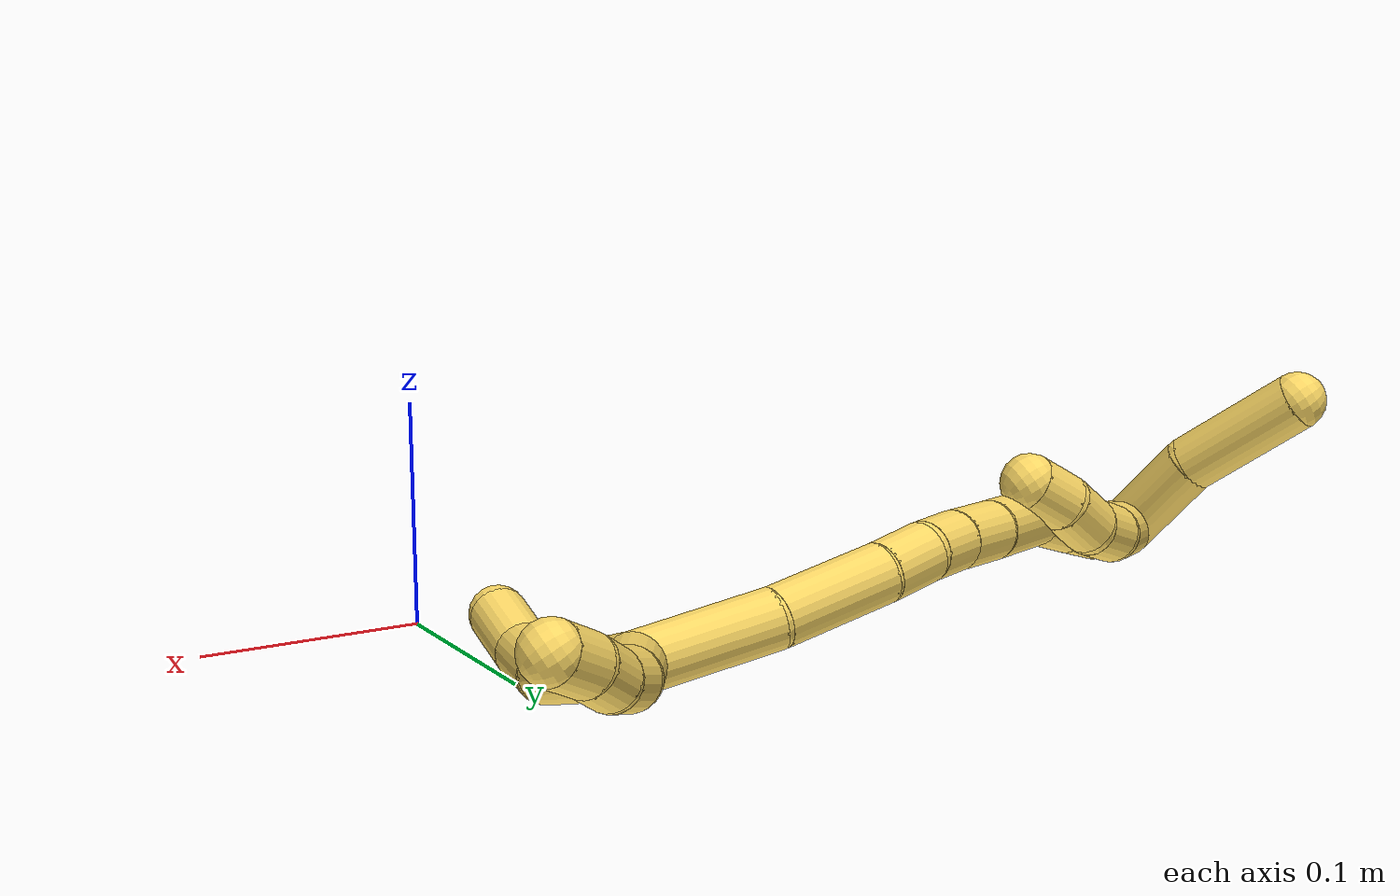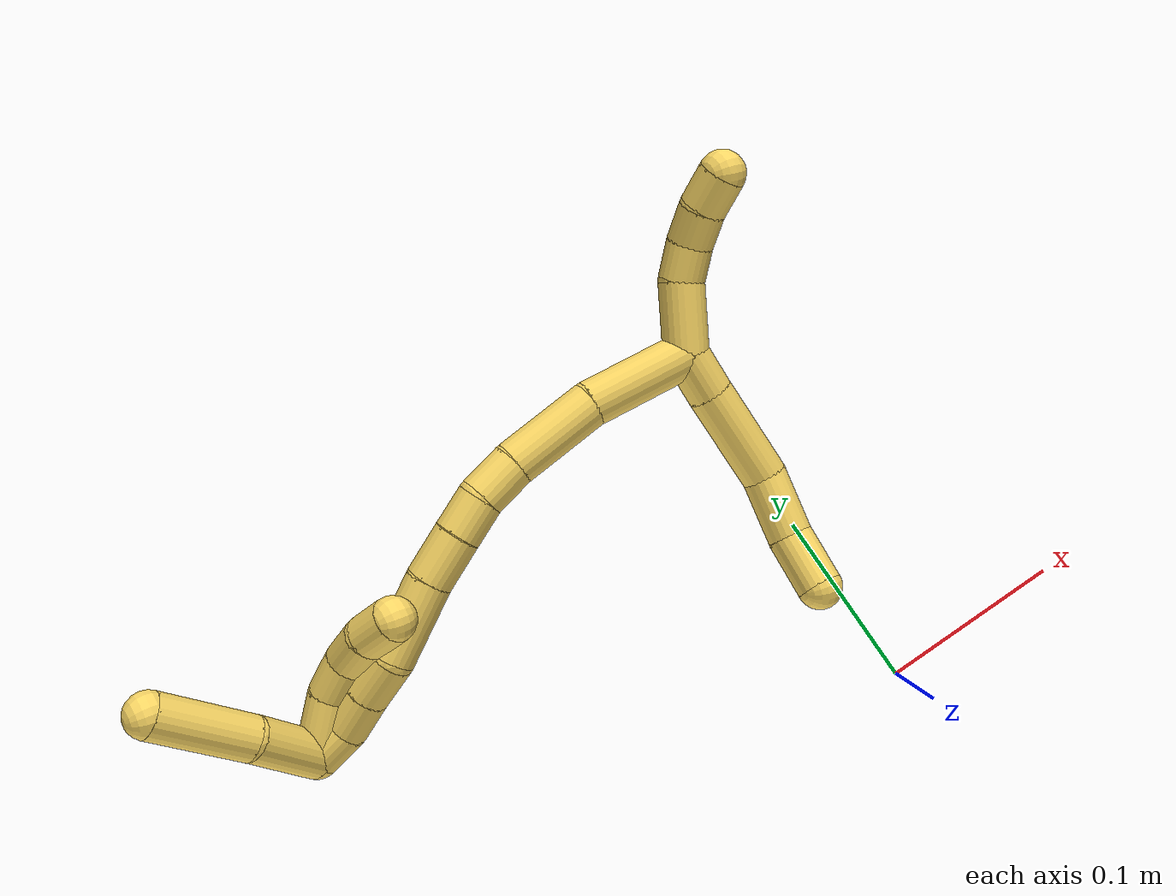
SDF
<sdf version="1.7">
 <world name="default">
  <model name="photoneo_s_sensor">
   <static>1</static>
   <pose>0 0 2 1.57079 1.57079 3.14159</pose>
   <link name="link">
    <inertial><mass>0.1</mass></inertial>
    <sensor name="sensor" type="depth">
     <update_rate>30</update_rate>
     <camera>
      <horizontal_fov>1.22</horizontal_fov>
      <image><width>1920</width><height>1200</height><format>B8G8R8</format></image>
      <clip><near>0.1</near><far>4</far></clip>
      <depth_camera><output>points</output></depth_camera>
     </camera>
     <plugin name="camera_plugin" filename="libgazebo_ros_depth_camera.so">
      <baseline>0.2</baseline>
      <alwaysOn>1</alwaysOn>
      <updateRate>0.0</updateRate>
      <cameraName>camera_ir</cameraName>
      <imageTopicName>/camera/color/image_raw</imageTopicName>
      <cameraInfoTopicName>/camera/color/camera_info</cameraInfoTopicName>
      <depthImageTopicName>/camera/depth/image_raw</depthImageTopicName>
      <depthImageCameraInfoTopicName>/camera/depth/camera_info</depthImageCameraInfoTopicName>
      <pointCloudTopicName>/camera/depth/points</pointCloudTopicName>
      <frameName>fr_optical</frameName>
      <pointCloudCutoff>0.1</pointCloudCutoff>
      <pointCloudCutoffMax>2.0</pointCloudCutoffMax>
      <distortionK1>0</distortionK1>
      <distortionK2>0</distortionK2>
      <distortionK3>0</distortionK3>
      <distortionT1>0</distortionT1>
      <distortionT2>0</distortionT2>
      <CxPrime>0</CxPrime>
      <Cx>0</Cx>
      <Cy>0</Cy>
      <focalLength>0</focalLength>
      <hackBaseline>0</hackBaseline>
     </plugin>
    </sensor>
   </link>
  </model>
  <model name="bin">
   <static>1</static>
   <link name="bottom">
    <collision name="collision-bottom">
     <pose>0 0 -0.01 0 -0 0</pose>
     <geometry><box><size>0.8 0.6 0.02</size></box></geometry>
     <surface>
      <friction><ode><mu>100</mu><mu2>100</mu2></ode></friction>
      <contact><collide_bitmask>65535</collide_bitmask></contact>
     </surface>
    </collision>
   </link>
   <link name="west_wall">
    <collision name="collision-west_wall">
     <pose>-0.41 0 0.1 0 -0 0</pose>
     <geometry><box><size>0.02 0.6 0.2</size></box></geometry>
     <surface>
      <friction><ode><mu>100</mu><mu2>100</mu2></ode></friction>
      <contact><collide_bitmask>65535</collide_bitmask></contact>
     </surface>
    </collision>
   </link>
   <link name="east_wall">
    <collision name="collision-east_wall">
     <pose>0.41 0 0.1 0 -0 0</pose>
     <geometry><box><size>0.02 0.6 0.2</size></box></geometry>
     <surface>
      <friction><ode><mu>100</mu><mu2>100</mu2></ode></friction>
      <contact><collide_bitmask>65535</collide_bitmask></contact>
     </surface>
    </collision>
   </link>
   <link name="south_wall">
    <collision name="collision-south_wall">
     <pose>0 -0.31 0.1 0 -0 0</pose>
     <geometry><box><size>0.8 0.02 0.2</size></box></geometry>
     <surface>
      <friction><ode><mu>100</mu><mu2>100</mu2></ode></friction>
      <contact><collide_bitmask>65535</collide_bitmask></contact>
     </surface>
    </collision>
   </link>
   <link name="north_wall">
    <collision name="collision-north_wall">
     <pose>0 0.31 0.1 0 -0 0</pose>
     <geometry><box><size>0.8 0.02 0.2</size></box></geometry>
     <surface>
      <friction><ode><mu>100</mu><mu2>100</mu2></ode></friction>
      <contact><collide_bitmask>65535</collide_bitmask></contact>
     </surface>
    </collision>
   </link>
  </model>
  <model name="5">
   <static>0</static>
   <link name="5">
    <collision name="collision-cylinder-e_1_2_8">
     <pose>-0.001856 -0.011675 -0.004526 1.94062 -0.14714 -0.214412</pose>
     <geometry><cylinder><radius>0.0125</radius><length>0.025317</length></cylinder></geometry>
     <surface>
      <friction><ode><mu>1.16</mu><mu2>1.16</mu2><slip1>0</slip1><slip2>0</slip2></ode></friction>
      <contact><ode><kp>1e+06</kp><kd>1</kd><max_vel>0</max_vel><min_depth>0.001</min_depth></ode></contact>
     </surface>
    </collision>
    <visual name="visual-cylinder-e_1_2_8">
     <pose>-0.001856 -0.011675 -0.004526 1.94062 -0.14714 -0.214412</pose>
     <geometry><cylinder><radius>0.0125</radius><length>0.025317</length></cylinder></geometry>
     <material><ambient>1 0.858824 0.4 1</ambient></material>
    </visual>
    <collision name="collision-cylinder-e_2_8_9">
     <pose>-0.006386 -0.049523 -0.019108 1.93764 -0.09511 -0.138318</pose>
     <geometry><cylinder><radius>0.0125</radius><length>0.056332</length></cylinder></geometry>
     <surface>
      <friction><ode><mu>1.16</mu><mu2>1.16</mu2><slip1>0</slip1><slip2>0</slip2></ode></friction>
      <contact><ode><kp>1e+06</kp><kd>1</kd><max_vel>0</max_vel><min_depth>0.001</min_depth></ode></contact>
     </surface>
    </collision>
    <visual name="visual-cylinder-e_2_8_9">
     <pose>-0.006386 -0.049523 -0.019108 1.93764 -0.09511 -0.138318</pose>
     <geometry><cylinder><radius>0.0125</radius><length>0.056332</length></cylinder></geometry>
     <material><ambient>1 0.858824 0.4 1</ambient></material>
    </visual>
    <collision name="collision-cylinder-e_3_9_10">
     <pose>-0.008316 -0.093772 -0.030247 1.63056 0.041128 0.043661</pose>
     <geometry><cylinder><radius>0.0125</radius><length>0.036248</length></cylinder></geometry>
     <surface>
      <friction><ode><mu>1.16</mu><mu2>1.16</mu2><slip1>0</slip1><slip2>0</slip2></ode></friction>
      <contact><ode><kp>1e+06</kp><kd>1</kd><max_vel>0</max_vel><min_depth>0.001</min_depth></ode></contact>
     </surface>
    </collision>
    <visual name="visual-cylinder-e_3_9_10">
     <pose>-0.008316 -0.093772 -0.030247 1.63056 0.041128 0.043661</pose>
     <geometry><cylinder><radius>0.0125</radius><length>0.036248</length></cylinder></geometry>
     <material><ambient>1 0.858824 0.4 1</ambient></material>
    </visual>
    <collision name="collision-cylinder-e_4_10_6">
     <pose>-0.002436 -0.127057 -0.031436 1.57784 0.325619 0.327878</pose>
     <geometry><cylinder><radius>0.0125</radius><length>0.032104</length></cylinder></geometry>
     <surface>
      <friction><ode><mu>1.16</mu><mu2>1.16</mu2><slip1>0</slip1><slip2>0</slip2></ode></friction>
      <contact><ode><kp>1e+06</kp><kd>1</kd><max_vel>0</max_vel><min_depth>0.001</min_depth></ode></contact>
     </surface>
    </collision>
    <visual name="visual-cylinder-e_4_10_6">
     <pose>-0.002436 -0.127057 -0.031436 1.57784 0.325619 0.327878</pose>
     <geometry><cylinder><radius>0.0125</radius><length>0.032104</length></cylinder></geometry>
     <material><ambient>1 0.858824 0.4 1</ambient></material>
    </visual>
    <collision name="collision-cylinder-e_1_2_11">
     <pose>0.004718 0.018609 -0.002938 -1.72737 0.245374 -0.286621</pose>
     <geometry><cylinder><radius>0.0125</radius><length>0.038843</length></cylinder></geometry>
     <surface>
      <friction><ode><mu>1.16</mu><mu2>1.16</mu2><slip1>0</slip1><slip2>0</slip2></ode></friction>
      <contact><ode><kp>1e+06</kp><kd>1</kd><max_vel>0</max_vel><min_depth>0.001</min_depth></ode></contact>
     </surface>
    </collision>
    <visual name="visual-cylinder-e_1_2_11">
     <pose>0.004718 0.018609 -0.002938 -1.72737 0.245374 -0.286621</pose>
     <geometry><cylinder><radius>0.0125</radius><length>0.038843</length></cylinder></geometry>
     <material><ambient>1 0.858824 0.4 1</ambient></material>
    </visual>
    <collision name="collision-cylinder-e_2_11_12">
     <pose>0.0143 0.045494 -0.008905 -1.92175 0.504304 -0.706438</pose>
     <geometry><cylinder><radius>0.0125</radius><length>0.020133</length></cylinder></geometry>
     <surface>
      <friction><ode><mu>1.16</mu><mu2>1.16</mu2><slip1>0</slip1><slip2>0</slip2></ode></friction>
      <contact><ode><kp>1e+06</kp><kd>1</kd><max_vel>0</max_vel><min_depth>0.001</min_depth></ode></contact>
     </surface>
    </collision>
    <visual name="visual-cylinder-e_2_11_12">
     <pose>0.0143 0.045494 -0.008905 -1.92175 0.504304 -0.706438</pose>
     <geometry><cylinder><radius>0.0125</radius><length>0.020133</length></cylinder></geometry>
     <material><ambient>1 0.858824 0.4 1</ambient></material>
    </visual>
    <collision name="collision-cylinder-e_3_12_13">
     <pose>0.02621 0.060677 -0.014211 -1.88901 0.769636 -1.02072</pose>
     <geometry><cylinder><radius>0.0125</radius><length>0.020252</length></cylinder></geometry>
     <surface>
      <friction><ode><mu>1.16</mu><mu2>1.16</mu2><slip1>0</slip1><slip2>0</slip2></ode></friction>
      <contact><ode><kp>1e+06</kp><kd>1</kd><max_vel>0</max_vel><min_depth>0.001</min_depth></ode></contact>
     </surface>
    </collision>
    <visual name="visual-cylinder-e_3_12_13">
     <pose>0.02621 0.060677 -0.014211 -1.88901 0.769636 -1.02072</pose>
     <geometry><cylinder><radius>0.0125</radius><length>0.020252</length></cylinder></geometry>
     <material><ambient>1 0.858824 0.4 1</ambient></material>
    </visual>
    <collision name="collision-cylinder-e_4_13_5">
     <pose>0.040696 0.073705 -0.020367 -2.13596 0.798463 -1.30873</pose>
     <geometry><cylinder><radius>0.0125</radius><length>0.020773</length></cylinder></geometry>
     <surface>
      <friction><ode><mu>1.16</mu><mu2>1.16</mu2><slip1>0</slip1><slip2>0</slip2></ode></friction>
      <contact><ode><kp>1e+06</kp><kd>1</kd><max_vel>0</max_vel><min_depth>0.001</min_depth></ode></contact>
     </surface>
    </collision>
    <visual name="visual-cylinder-e_4_13_5">
     <pose>0.040696 0.073705 -0.020367 -2.13596 0.798463 -1.30873</pose>
     <geometry><cylinder><radius>0.0125</radius><length>0.020773</length></cylinder></geometry>
     <material><ambient>1 0.858824 0.4 1</ambient></material>
    </visual>
    <collision name="collision-cylinder-e_1_2_14">
     <pose>-0.009841 -0.004336 0.027264 0.157726 -0.342429 -0.027327</pose>
     <geometry><cylinder><radius>0.0125</radius><length>0.058617</length></cylinder></geometry>
     <surface>
      <friction><ode><mu>1.16</mu><mu2>1.16</mu2><slip1>0</slip1><slip2>0</slip2></ode></friction>
      <contact><ode><kp>1e+06</kp><kd>1</kd><max_vel>0</max_vel><min_depth>0.001</min_depth></ode></contact>
     </surface>
    </collision>
    <visual name="visual-cylinder-e_1_2_14">
     <pose>-0.009841 -0.004336 0.027264 0.157726 -0.342429 -0.027327</pose>
     <geometry><cylinder><radius>0.0125</radius><length>0.058617</length></cylinder></geometry>
     <material><ambient>1 0.858824 0.4 1</ambient></material>
    </visual>
    <collision name="collision-cylinder-e_2_14_15">
     <pose>-0.027445 -0.017061 0.077627 0.34837 -0.305953 -0.054249</pose>
     <geometry><cylinder><radius>0.0125</radius><length>0.051542</length></cylinder></geometry>
     <surface>
      <friction><ode><mu>1.16</mu><mu2>1.16</mu2><slip1>0</slip1><slip2>0</slip2></ode></friction>
      <contact><ode><kp>1e+06</kp><kd>1</kd><max_vel>0</max_vel><min_depth>0.001</min_depth></ode></contact>
     </surface>
    </collision>
    <visual name="visual-cylinder-e_2_14_15">
     <pose>-0.027445 -0.017061 0.077627 0.34837 -0.305953 -0.054249</pose>
     <geometry><cylinder><radius>0.0125</radius><length>0.051542</length></cylinder></geometry>
     <material><ambient>1 0.858824 0.4 1</ambient></material>
    </visual>
    <collision name="collision-cylinder-e_3_15_16">
     <pose>-0.038761 -0.030921 0.111009 0.488882 -0.296147 -0.074378</pose>
     <geometry><cylinder><radius>0.0125</radius><length>0.024357</length></cylinder></geometry>
     <surface>
      <friction><ode><mu>1.16</mu><mu2>1.16</mu2><slip1>0</slip1><slip2>0</slip2></ode></friction>
      <contact><ode><kp>1e+06</kp><kd>1</kd><max_vel>0</max_vel><min_depth>0.001</min_depth></ode></contact>
     </surface>
    </collision>
    <visual name="visual-cylinder-e_3_15_16">
     <pose>-0.038761 -0.030921 0.111009 0.488882 -0.296147 -0.074378</pose>
     <geometry><cylinder><radius>0.0125</radius><length>0.024357</length></cylinder></geometry>
     <material><ambient>1 0.858824 0.4 1</ambient></material>
    </visual>
    <collision name="collision-cylinder-e_4_16_17">
     <pose>-0.046576 -0.043316 0.128808 0.744576 -0.394998 -0.155966</pose>
     <geometry><cylinder><radius>0.0125</radius><length>0.022143</length></cylinder></geometry>
     <surface>
      <friction><ode><mu>1.16</mu><mu2>1.16</mu2><slip1>0</slip1><slip2>0</slip2></ode></friction>
      <contact><ode><kp>1e+06</kp><kd>1</kd><max_vel>0</max_vel><min_depth>0.001</min_depth></ode></contact>
     </surface>
    </collision>
    <visual name="visual-cylinder-e_4_16_17">
     <pose>-0.046576 -0.043316 0.128808 0.744576 -0.394998 -0.155966</pose>
     <geometry><cylinder><radius>0.0125</radius><length>0.022143</length></cylinder></geometry>
     <material><ambient>1 0.858824 0.4 1</ambient></material>
    </visual>
    <collision name="collision-cylinder-e_5_17_18">
     <pose>-0.056844 -0.058967 0.145325 0.76978 -0.446875 -0.183583</pose>
     <geometry><cylinder><radius>0.0125</radius><length>0.027805</length></cylinder></geometry>
     <surface>
      <friction><ode><mu>1.16</mu><mu2>1.16</mu2><slip1>0</slip1><slip2>0</slip2></ode></friction>
      <contact><ode><kp>1e+06</kp><kd>1</kd><max_vel>0</max_vel><min_depth>0.001</min_depth></ode></contact>
     </surface>
    </collision>
    <visual name="visual-cylinder-e_5_17_18">
     <pose>-0.056844 -0.058967 0.145325 0.76978 -0.446875 -0.183583</pose>
     <geometry><cylinder><radius>0.0125</radius><length>0.027805</length></cylinder></geometry>
     <material><ambient>1 0.858824 0.4 1</ambient></material>
    </visual>
    <collision name="collision-cylinder-e_6_18_19">
     <pose>-0.07222 -0.083634 0.16736 0.885454 -0.426968 -0.204846</pose>
     <geometry><cylinder><radius>0.0125</radius><length>0.045242</length></cylinder></geometry>
     <surface>
      <friction><ode><mu>1.16</mu><mu2>1.16</mu2><slip1>0</slip1><slip2>0</slip2></ode></friction>
      <contact><ode><kp>1e+06</kp><kd>1</kd><max_vel>0</max_vel><min_depth>0.001</min_depth></ode></contact>
     </surface>
    </collision>
    <visual name="visual-cylinder-e_6_18_19">
     <pose>-0.07222 -0.083634 0.16736 0.885454 -0.426968 -0.204846</pose>
     <geometry><cylinder><radius>0.0125</radius><length>0.045242</length></cylinder></geometry>
     <material><ambient>1 0.858824 0.4 1</ambient></material>
    </visual>
    <collision name="collision-cylinder-e_7_19_20">
     <pose>-0.090085 -0.106491 0.186868 0.818284 -0.731104 -0.328936</pose>
     <geometry><cylinder><radius>0.0125</radius><length>0.025455</length></cylinder></geometry>
     <surface>
      <friction><ode><mu>1.16</mu><mu2>1.16</mu2><slip1>0</slip1><slip2>0</slip2></ode></friction>
      <contact><ode><kp>1e+06</kp><kd>1</kd><max_vel>0</max_vel><min_depth>0.001</min_depth></ode></contact>
     </surface>
    </collision>
    <visual name="visual-cylinder-e_7_19_20">
     <pose>-0.090085 -0.106491 0.186868 0.818284 -0.731104 -0.328936</pose>
     <geometry><cylinder><radius>0.0125</radius><length>0.025455</length></cylinder></geometry>
     <material><ambient>1 0.858824 0.4 1</ambient></material>
    </visual>
    <collision name="collision-cylinder-e_8_20_21">
     <pose>-0.10629 -0.120402 0.199238 0.870598 -0.700138 -0.336378</pose>
     <geometry><cylinder><radius>0.0125</radius><length>0.023922</length></cylinder></geometry>
     <surface>
      <friction><ode><mu>1.16</mu><mu2>1.16</mu2><slip1>0</slip1><slip2>0</slip2></ode></friction>
      <contact><ode><kp>1e+06</kp><kd>1</kd><max_vel>0</max_vel><min_depth>0.001</min_depth></ode></contact>
     </surface>
    </collision>
    <visual name="visual-cylinder-e_8_20_21">
     <pose>-0.10629 -0.120402 0.199238 0.870598 -0.700138 -0.336378</pose>
     <geometry><cylinder><radius>0.0125</radius><length>0.023922</length></cylinder></geometry>
     <material><ambient>1 0.858824 0.4 1</ambient></material>
    </visual>
    <collision name="collision-cylinder-e_9_21_1">
     <pose>-0.119529 -0.132014 0.212712 0.547088 -0.557418 -0.160235</pose>
     <geometry><cylinder><radius>0.0125</radius><length>0.020917</length></cylinder></geometry>
     <surface>
      <friction><ode><mu>1.16</mu><mu2>1.16</mu2><slip1>0</slip1><slip2>0</slip2></ode></friction>
      <contact><ode><kp>1e+06</kp><kd>1</kd><max_vel>0</max_vel><min_depth>0.001</min_depth></ode></contact>
     </surface>
    </collision>
    <visual name="visual-cylinder-e_9_21_1">
     <pose>-0.119529 -0.132014 0.212712 0.547088 -0.557418 -0.160235</pose>
     <geometry><cylinder><radius>0.0125</radius><length>0.020917</length></cylinder></geometry>
     <material><ambient>1 0.858824 0.4 1</ambient></material>
    </visual>
    <collision name="collision-cylinder-e_1_1_22">
     <pose>-0.118278 -0.122245 0.21358 -2.0073 0.40381 -0.621881</pose>
     <geometry><cylinder><radius>0.0125</radius><length>0.034526</length></cylinder></geometry>
     <surface>
      <friction><ode><mu>1.16</mu><mu2>1.16</mu2><slip1>0</slip1><slip2>0</slip2></ode></friction>
      <contact><ode><kp>1e+06</kp><kd>1</kd><max_vel>0</max_vel><min_depth>0.001</min_depth></ode></contact>
     </surface>
    </collision>
    <visual name="visual-cylinder-e_1_1_22">
     <pose>-0.118278 -0.122245 0.21358 -2.0073 0.40381 -0.621881</pose>
     <geometry><cylinder><radius>0.0125</radius><length>0.034526</length></cylinder></geometry>
     <material><ambient>1 0.858824 0.4 1</ambient></material>
    </visual>
    <collision name="collision-cylinder-e_2_22_23">
     <pose>-0.104402 -0.100878 0.201966 -2.1831 0.693713 -1.21553</pose>
     <geometry><cylinder><radius>0.0125</radius><length>0.022188</length></cylinder></geometry>
     <surface>
      <friction><ode><mu>1.16</mu><mu2>1.16</mu2><slip1>0</slip1><slip2>0</slip2></ode></friction>
      <contact><ode><kp>1e+06</kp><kd>1</kd><max_vel>0</max_vel><min_depth>0.001</min_depth></ode></contact>
     </surface>
    </collision>
    <visual name="visual-cylinder-e_2_22_23">
     <pose>-0.104402 -0.100878 0.201966 -2.1831 0.693713 -1.21553</pose>
     <geometry><cylinder><radius>0.0125</radius><length>0.022188</length></cylinder></geometry>
     <material><ambient>1 0.858824 0.4 1</ambient></material>
    </visual>
    <collision name="collision-cylinder-e_3_23_24">
     <pose>-0.08767 -0.089279 0.193707 -2.19919 1.03603 -1.68268</pose>
     <geometry><cylinder><radius>0.0125</radius><length>0.022405</length></cylinder></geometry>
     <surface>
      <friction><ode><mu>1.16</mu><mu2>1.16</mu2><slip1>0</slip1><slip2>0</slip2></ode></friction>
      <contact><ode><kp>1e+06</kp><kd>1</kd><max_vel>0</max_vel><min_depth>0.001</min_depth></ode></contact>
     </surface>
    </collision>
    <visual name="visual-cylinder-e_3_23_24">
     <pose>-0.08767 -0.089279 0.193707 -2.19919 1.03603 -1.68268</pose>
     <geometry><cylinder><radius>0.0125</radius><length>0.022405</length></cylinder></geometry>
     <material><ambient>1 0.858824 0.4 1</ambient></material>
    </visual>
    <collision name="collision-cylinder-e_4_24_4">
     <pose>-0.069037 -0.082194 0.18566 -2.65743 1.03829 -2.32582</pose>
     <geometry><cylinder><radius>0.0125</radius><length>0.020881</length></cylinder></geometry>
     <surface>
      <friction><ode><mu>1.16</mu><mu2>1.16</mu2><slip1>0</slip1><slip2>0</slip2></ode></friction>
      <contact><ode><kp>1e+06</kp><kd>1</kd><max_vel>0</max_vel><min_depth>0.001</min_depth></ode></contact>
     </surface>
    </collision>
    <visual name="visual-cylinder-e_4_24_4">
     <pose>-0.069037 -0.082194 0.18566 -2.65743 1.03829 -2.32582</pose>
     <geometry><cylinder><radius>0.0125</radius><length>0.020881</length></cylinder></geometry>
     <material><ambient>1 0.858824 0.4 1</ambient></material>
    </visual>
    <collision name="collision-cylinder-e_1_1_25">
     <pose>-0.116457 -0.125003 0.237161 -0.603498 0.397609 -0.12525</pose>
     <geometry><cylinder><radius>0.0125</radius><length>0.044445</length></cylinder></geometry>
     <surface>
      <friction><ode><mu>1.16</mu><mu2>1.16</mu2><slip1>0</slip1><slip2>0</slip2></ode></friction>
      <contact><ode><kp>1e+06</kp><kd>1</kd><max_vel>0</max_vel><min_depth>0.001</min_depth></ode></contact>
     </surface>
    </collision>
    <visual name="visual-cylinder-e_1_1_25">
     <pose>-0.116457 -0.125003 0.237161 -0.603498 0.397609 -0.12525</pose>
     <geometry><cylinder><radius>0.0125</radius><length>0.044445</length></cylinder></geometry>
     <material><ambient>1 0.858824 0.4 1</ambient></material>
    </visual>
    <collision name="collision-cylinder-e_2_25_3">
     <pose>-0.10354 -0.098116 0.276838 -0.589663 0.155844 -0.047414</pose>
     <geometry><cylinder><radius>0.0125</radius><length>0.055555</length></cylinder></geometry>
     <surface>
      <friction><ode><mu>1.16</mu><mu2>1.16</mu2><slip1>0</slip1><slip2>0</slip2></ode></friction>
      <contact><ode><kp>1e+06</kp><kd>1</kd><max_vel>0</max_vel><min_depth>0.001</min_depth></ode></contact>
     </surface>
    </collision>
    <visual name="visual-cylinder-e_2_25_3">
     <pose>-0.10354 -0.098116 0.276838 -0.589663 0.155844 -0.047414</pose>
     <geometry><cylinder><radius>0.0125</radius><length>0.055555</length></cylinder></geometry>
     <material><ambient>1 0.858824 0.4 1</ambient></material>
    </visual>
    <collision name="collision-sphere-3">
     <pose>-0.099229 -0.082856 0.299645 0 -0 0</pose>
     <geometry><sphere><radius>0.0125</radius></sphere></geometry>
     <surface>
      <friction><ode><mu>1.16</mu><mu2>1.16</mu2><slip1>0</slip1><slip2>0</slip2></ode></friction>
      <contact><ode><kp>1e+06</kp><kd>1</kd><max_vel>0</max_vel><min_depth>0.001</min_depth></ode></contact>
     </surface>
    </collision>
    <visual name="visual-sphere-3">
     <pose>-0.099229 -0.082856 0.299645 0 -0 0</pose>
     <geometry><sphere><radius>0.0125</radius></sphere></geometry>
     <material><ambient>1 0.858824 0.4 1</ambient></material>
    </visual>
    <collision name="collision-sphere-25">
     <pose>-0.107852 -0.113375 0.254031 0 -0 0</pose>
     <geometry><sphere><radius>0.0125</radius></sphere></geometry>
     <surface>
      <friction><ode><mu>1.16</mu><mu2>1.16</mu2><slip1>0</slip1><slip2>0</slip2></ode></friction>
      <contact><ode><kp>1e+06</kp><kd>1</kd><max_vel>0</max_vel><min_depth>0.001</min_depth></ode></contact>
     </surface>
    </collision>
    <visual name="visual-sphere-25">
     <pose>-0.107852 -0.113375 0.254031 0 -0 0</pose>
     <geometry><sphere><radius>0.0125</radius></sphere></geometry>
     <material><ambient>1 0.858824 0.4 1</ambient></material>
    </visual>
    <collision name="collision-sphere-4">
     <pose>-0.060042 -0.079726 0.180969 0 -0 0</pose>
     <geometry><sphere><radius>0.0125</radius></sphere></geometry>
     <surface>
      <friction><ode><mu>1.16</mu><mu2>1.16</mu2><slip1>0</slip1><slip2>0</slip2></ode></friction>
      <contact><ode><kp>1e+06</kp><kd>1</kd><max_vel>0</max_vel><min_depth>0.001</min_depth></ode></contact>
     </surface>
    </collision>
    <visual name="visual-sphere-4">
     <pose>-0.060042 -0.079726 0.180969 0 -0 0</pose>
     <geometry><sphere><radius>0.0125</radius></sphere></geometry>
     <material><ambient>1 0.858824 0.4 1</ambient></material>
    </visual>
    <collision name="collision-sphere-24">
     <pose>-0.078031 -0.084661 0.190351 0 -0 0</pose>
     <geometry><sphere><radius>0.0125</radius></sphere></geometry>
     <surface>
      <friction><ode><mu>1.16</mu><mu2>1.16</mu2><slip1>0</slip1><slip2>0</slip2></ode></friction>
      <contact><ode><kp>1e+06</kp><kd>1</kd><max_vel>0</max_vel><min_depth>0.001</min_depth></ode></contact>
     </surface>
    </collision>
    <visual name="visual-sphere-24">
     <pose>-0.078031 -0.084661 0.190351 0 -0 0</pose>
     <geometry><sphere><radius>0.0125</radius></sphere></geometry>
     <material><ambient>1 0.858824 0.4 1</ambient></material>
    </visual>
    <collision name="collision-sphere-23">
     <pose>-0.097308 -0.093898 0.197064 0 -0 0</pose>
     <geometry><sphere><radius>0.0125</radius></sphere></geometry>
     <surface>
      <friction><ode><mu>1.16</mu><mu2>1.16</mu2><slip1>0</slip1><slip2>0</slip2></ode></friction>
      <contact><ode><kp>1e+06</kp><kd>1</kd><max_vel>0</max_vel><min_depth>0.001</min_depth></ode></contact>
     </surface>
    </collision>
    <visual name="visual-sphere-23">
     <pose>-0.097308 -0.093898 0.197064 0 -0 0</pose>
     <geometry><sphere><radius>0.0125</radius></sphere></geometry>
     <material><ambient>1 0.858824 0.4 1</ambient></material>
    </visual>
    <collision name="collision-sphere-22">
     <pose>-0.111495 -0.107858 0.206869 0 -0 0</pose>
     <geometry><sphere><radius>0.0125</radius></sphere></geometry>
     <surface>
      <friction><ode><mu>1.16</mu><mu2>1.16</mu2><slip1>0</slip1><slip2>0</slip2></ode></friction>
      <contact><ode><kp>1e+06</kp><kd>1</kd><max_vel>0</max_vel><min_depth>0.001</min_depth></ode></contact>
     </surface>
    </collision>
    <visual name="visual-sphere-22">
     <pose>-0.111495 -0.107858 0.206869 0 -0 0</pose>
     <geometry><sphere><radius>0.0125</radius></sphere></geometry>
     <material><ambient>1 0.858824 0.4 1</ambient></material>
    </visual>
    <collision name="collision-sphere-1">
     <pose>-0.125061 -0.136631 0.220292 0 -0 0</pose>
     <geometry><sphere><radius>0.0125</radius></sphere></geometry>
     <surface>
      <friction><ode><mu>1.16</mu><mu2>1.16</mu2><slip1>0</slip1><slip2>0</slip2></ode></friction>
      <contact><ode><kp>1e+06</kp><kd>1</kd><max_vel>0</max_vel><min_depth>0.001</min_depth></ode></contact>
     </surface>
    </collision>
    <visual name="visual-sphere-1">
     <pose>-0.125061 -0.136631 0.220292 0 -0 0</pose>
     <geometry><sphere><radius>0.0125</radius></sphere></geometry>
     <material><ambient>1 0.858824 0.4 1</ambient></material>
    </visual>
    <collision name="collision-sphere-21">
     <pose>-0.113997 -0.127397 0.205132 0 -0 0</pose>
     <geometry><sphere><radius>0.0125</radius></sphere></geometry>
     <surface>
      <friction><ode><mu>1.16</mu><mu2>1.16</mu2><slip1>0</slip1><slip2>0</slip2></ode></friction>
      <contact><ode><kp>1e+06</kp><kd>1</kd><max_vel>0</max_vel><min_depth>0.001</min_depth></ode></contact>
     </surface>
    </collision>
    <visual name="visual-sphere-21">
     <pose>-0.113997 -0.127397 0.205132 0 -0 0</pose>
     <geometry><sphere><radius>0.0125</radius></sphere></geometry>
     <material><ambient>1 0.858824 0.4 1</ambient></material>
    </visual>
    <collision name="collision-sphere-11">
     <pose>0.009436 0.037218 -0.005876 0 -0 0</pose>
     <geometry><sphere><radius>0.0125</radius></sphere></geometry>
     <surface>
      <friction><ode><mu>1.16</mu><mu2>1.16</mu2><slip1>0</slip1><slip2>0</slip2></ode></friction>
      <contact><ode><kp>1e+06</kp><kd>1</kd><max_vel>0</max_vel><min_depth>0.001</min_depth></ode></contact>
     </surface>
    </collision>
    <visual name="visual-sphere-11">
     <pose>0.009436 0.037218 -0.005876 0 -0 0</pose>
     <geometry><sphere><radius>0.0125</radius></sphere></geometry>
     <material><ambient>1 0.858824 0.4 1</ambient></material>
    </visual>
    <collision name="collision-sphere-6">
     <pose>0.002699 -0.142264 -0.031543 0 -0 0</pose>
     <geometry><sphere><radius>0.0125</radius></sphere></geometry>
     <surface>
      <friction><ode><mu>1.16</mu><mu2>1.16</mu2><slip1>0</slip1><slip2>0</slip2></ode></friction>
      <contact><ode><kp>1e+06</kp><kd>1</kd><max_vel>0</max_vel><min_depth>0.001</min_depth></ode></contact>
     </surface>
    </collision>
    <visual name="visual-sphere-6">
     <pose>0.002699 -0.142264 -0.031543 0 -0 0</pose>
     <geometry><sphere><radius>0.0125</radius></sphere></geometry>
     <material><ambient>1 0.858824 0.4 1</ambient></material>
    </visual>
    <collision name="collision-sphere-10">
     <pose>-0.007571 -0.111849 -0.031328 0 -0 0</pose>
     <geometry><sphere><radius>0.0125</radius></sphere></geometry>
     <surface>
      <friction><ode><mu>1.16</mu><mu2>1.16</mu2><slip1>0</slip1><slip2>0</slip2></ode></friction>
      <contact><ode><kp>1e+06</kp><kd>1</kd><max_vel>0</max_vel><min_depth>0.001</min_depth></ode></contact>
     </surface>
    </collision>
    <visual name="visual-sphere-10">
     <pose>-0.007571 -0.111849 -0.031328 0 -0 0</pose>
     <geometry><sphere><radius>0.0125</radius></sphere></geometry>
     <material><ambient>1 0.858824 0.4 1</ambient></material>
    </visual>
    <collision name="collision-sphere-9">
     <pose>-0.009061 -0.075696 -0.029165 0 -0 0</pose>
     <geometry><sphere><radius>0.0125</radius></sphere></geometry>
     <surface>
      <friction><ode><mu>1.16</mu><mu2>1.16</mu2><slip1>0</slip1><slip2>0</slip2></ode></friction>
      <contact><ode><kp>1e+06</kp><kd>1</kd><max_vel>0</max_vel><min_depth>0.001</min_depth></ode></contact>
     </surface>
    </collision>
    <visual name="visual-sphere-9">
     <pose>-0.009061 -0.075696 -0.029165 0 -0 0</pose>
     <geometry><sphere><radius>0.0125</radius></sphere></geometry>
     <material><ambient>1 0.858824 0.4 1</ambient></material>
    </visual>
    <collision name="collision-sphere-2">
     <geometry><sphere><radius>0.0125</radius></sphere></geometry>
     <surface>
      <friction><ode><mu>1.16</mu><mu2>1.16</mu2><slip1>0</slip1><slip2>0</slip2></ode></friction>
      <contact><ode><kp>1e+06</kp><kd>1</kd><max_vel>0</max_vel><min_depth>0.001</min_depth></ode></contact>
     </surface>
    </collision>
    <visual name="visual-sphere-2">
     <geometry><sphere><radius>0.0125</radius></sphere></geometry>
     <material><ambient>1 0.858824 0.4 1</ambient></material>
    </visual>
    <collision name="collision-sphere-19">
     <pose>-0.081587 -0.099575 0.180392 0 -0 0</pose>
     <geometry><sphere><radius>0.0125</radius></sphere></geometry>
     <surface>
      <friction><ode><mu>1.16</mu><mu2>1.16</mu2><slip1>0</slip1><slip2>0</slip2></ode></friction>
      <contact><ode><kp>1e+06</kp><kd>1</kd><max_vel>0</max_vel><min_depth>0.001</min_depth></ode></contact>
     </surface>
    </collision>
    <visual name="visual-sphere-19">
     <pose>-0.081587 -0.099575 0.180392 0 -0 0</pose>
     <geometry><sphere><radius>0.0125</radius></sphere></geometry>
     <material><ambient>1 0.858824 0.4 1</ambient></material>
    </visual>
    <collision name="collision-sphere-8">
     <pose>-0.003712 -0.02335 -0.009052 0 -0 0</pose>
     <geometry><sphere><radius>0.0125</radius></sphere></geometry>
     <surface>
      <friction><ode><mu>1.16</mu><mu2>1.16</mu2><slip1>0</slip1><slip2>0</slip2></ode></friction>
      <contact><ode><kp>1e+06</kp><kd>1</kd><max_vel>0</max_vel><min_depth>0.001</min_depth></ode></contact>
     </surface>
    </collision>
    <visual name="visual-sphere-8">
     <pose>-0.003712 -0.02335 -0.009052 0 -0 0</pose>
     <geometry><sphere><radius>0.0125</radius></sphere></geometry>
     <material><ambient>1 0.858824 0.4 1</ambient></material>
    </visual>
    <collision name="collision-sphere-12">
     <pose>0.019164 0.05377 -0.011935 0 -0 0</pose>
     <geometry><sphere><radius>0.0125</radius></sphere></geometry>
     <surface>
      <friction><ode><mu>1.16</mu><mu2>1.16</mu2><slip1>0</slip1><slip2>0</slip2></ode></friction>
      <contact><ode><kp>1e+06</kp><kd>1</kd><max_vel>0</max_vel><min_depth>0.001</min_depth></ode></contact>
     </surface>
    </collision>
    <visual name="visual-sphere-12">
     <pose>0.019164 0.05377 -0.011935 0 -0 0</pose>
     <geometry><sphere><radius>0.0125</radius></sphere></geometry>
     <material><ambient>1 0.858824 0.4 1</ambient></material>
    </visual>
    <collision name="collision-sphere-13">
     <pose>0.033257 0.067584 -0.016486 0 -0 0</pose>
     <geometry><sphere><radius>0.0125</radius></sphere></geometry>
     <surface>
      <friction><ode><mu>1.16</mu><mu2>1.16</mu2><slip1>0</slip1><slip2>0</slip2></ode></friction>
      <contact><ode><kp>1e+06</kp><kd>1</kd><max_vel>0</max_vel><min_depth>0.001</min_depth></ode></contact>
     </surface>
    </collision>
    <visual name="visual-sphere-13">
     <pose>0.033257 0.067584 -0.016486 0 -0 0</pose>
     <geometry><sphere><radius>0.0125</radius></sphere></geometry>
     <material><ambient>1 0.858824 0.4 1</ambient></material>
    </visual>
    <collision name="collision-sphere-5">
     <pose>0.048136 0.079826 -0.024249 0 -0 0</pose>
     <geometry><sphere><radius>0.0125</radius></sphere></geometry>
     <surface>
      <friction><ode><mu>1.16</mu><mu2>1.16</mu2><slip1>0</slip1><slip2>0</slip2></ode></friction>
      <contact><ode><kp>1e+06</kp><kd>1</kd><max_vel>0</max_vel><min_depth>0.001</min_depth></ode></contact>
     </surface>
    </collision>
    <visual name="visual-sphere-5">
     <pose>0.048136 0.079826 -0.024249 0 -0 0</pose>
     <geometry><sphere><radius>0.0125</radius></sphere></geometry>
     <material><ambient>1 0.858824 0.4 1</ambient></material>
    </visual>
    <collision name="collision-sphere-14">
     <pose>-0.019682 -0.008673 0.054529 0 -0 0</pose>
     <geometry><sphere><radius>0.0125</radius></sphere></geometry>
     <surface>
      <friction><ode><mu>1.16</mu><mu2>1.16</mu2><slip1>0</slip1><slip2>0</slip2></ode></friction>
      <contact><ode><kp>1e+06</kp><kd>1</kd><max_vel>0</max_vel><min_depth>0.001</min_depth></ode></contact>
     </surface>
    </collision>
    <visual name="visual-sphere-14">
     <pose>-0.019682 -0.008673 0.054529 0 -0 0</pose>
     <geometry><sphere><radius>0.0125</radius></sphere></geometry>
     <material><ambient>1 0.858824 0.4 1</ambient></material>
    </visual>
    <collision name="collision-sphere-15">
     <pose>-0.035207 -0.02545 0.100725 0 -0 0</pose>
     <geometry><sphere><radius>0.0125</radius></sphere></geometry>
     <surface>
      <friction><ode><mu>1.16</mu><mu2>1.16</mu2><slip1>0</slip1><slip2>0</slip2></ode></friction>
      <contact><ode><kp>1e+06</kp><kd>1</kd><max_vel>0</max_vel><min_depth>0.001</min_depth></ode></contact>
     </surface>
    </collision>
    <visual name="visual-sphere-15">
     <pose>-0.035207 -0.02545 0.100725 0 -0 0</pose>
     <geometry><sphere><radius>0.0125</radius></sphere></geometry>
     <material><ambient>1 0.858824 0.4 1</ambient></material>
    </visual>
    <collision name="collision-sphere-16">
     <pose>-0.042315 -0.036391 0.121293 0 -0 0</pose>
     <geometry><sphere><radius>0.0125</radius></sphere></geometry>
     <surface>
      <friction><ode><mu>1.16</mu><mu2>1.16</mu2><slip1>0</slip1><slip2>0</slip2></ode></friction>
      <contact><ode><kp>1e+06</kp><kd>1</kd><max_vel>0</max_vel><min_depth>0.001</min_depth></ode></contact>
     </surface>
    </collision>
    <visual name="visual-sphere-16">
     <pose>-0.042315 -0.036391 0.121293 0 -0 0</pose>
     <geometry><sphere><radius>0.0125</radius></sphere></geometry>
     <material><ambient>1 0.858824 0.4 1</ambient></material>
    </visual>
    <collision name="collision-sphere-17">
     <pose>-0.050836 -0.050241 0.136322 0 -0 0</pose>
     <geometry><sphere><radius>0.0125</radius></sphere></geometry>
     <surface>
      <friction><ode><mu>1.16</mu><mu2>1.16</mu2><slip1>0</slip1><slip2>0</slip2></ode></friction>
      <contact><ode><kp>1e+06</kp><kd>1</kd><max_vel>0</max_vel><min_depth>0.001</min_depth></ode></contact>
     </surface>
    </collision>
    <visual name="visual-sphere-17">
     <pose>-0.050836 -0.050241 0.136322 0 -0 0</pose>
     <geometry><sphere><radius>0.0125</radius></sphere></geometry>
     <material><ambient>1 0.858824 0.4 1</ambient></material>
    </visual>
    <collision name="collision-sphere-18">
     <pose>-0.062852 -0.067693 0.154328 0 -0 0</pose>
     <geometry><sphere><radius>0.0125</radius></sphere></geometry>
     <surface>
      <friction><ode><mu>1.16</mu><mu2>1.16</mu2><slip1>0</slip1><slip2>0</slip2></ode></friction>
      <contact><ode><kp>1e+06</kp><kd>1</kd><max_vel>0</max_vel><min_depth>0.001</min_depth></ode></contact>
     </surface>
    </collision>
    <visual name="visual-sphere-18">
     <pose>-0.062852 -0.067693 0.154328 0 -0 0</pose>
     <geometry><sphere><radius>0.0125</radius></sphere></geometry>
     <material><ambient>1 0.858824 0.4 1</ambient></material>
    </visual>
    <collision name="collision-sphere-20">
     <pose>-0.098583 -0.113407 0.193344 0 -0 0</pose>
     <geometry><sphere><radius>0.0125</radius></sphere></geometry>
     <surface>
      <friction><ode><mu>1.16</mu><mu2>1.16</mu2><slip1>0</slip1><slip2>0</slip2></ode></friction>
      <contact><ode><kp>1e+06</kp><kd>1</kd><max_vel>0</max_vel><min_depth>0.001</min_depth></ode></contact>
     </surface>
    </collision>
    <visual name="visual-sphere-20">
     <pose>-0.098583 -0.113407 0.193344 0 -0 0</pose>
     <geometry><sphere><radius>0.0125</radius></sphere></geometry>
     <material><ambient>1 0.858824 0.4 1</ambient></material>
    </visual>
    <inertial>
     <pose>-0.047765 -0.058624 0.104575 0 -0 0</pose>
     <mass>0.75</mass>
     <inertia><ixx>9.7e-05</ixx><ixy>0</ixy><ixz>0</ixz><iyy>4.2e-05</iyy><iyz>0</iyz><izz>4e-05</izz></inertia>
    </inertial>
   </link>
   <pose>0.001992 0.210034 0.038592 0.064237 -1.02721 -0.327934</pose>
  </model>
 </world>
</sdf>
